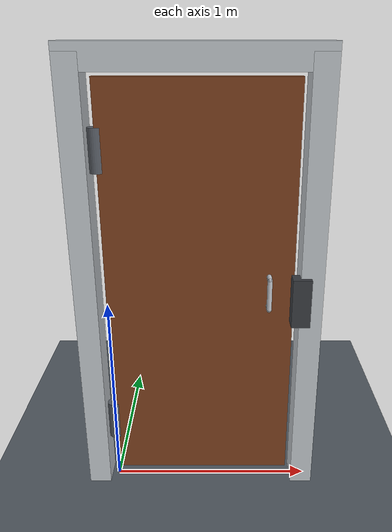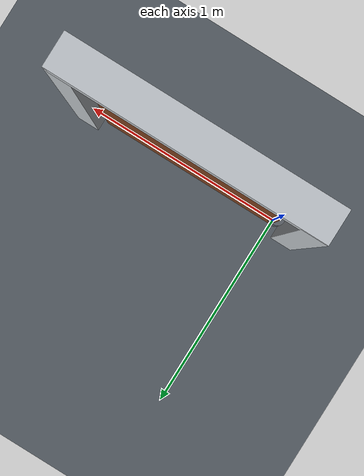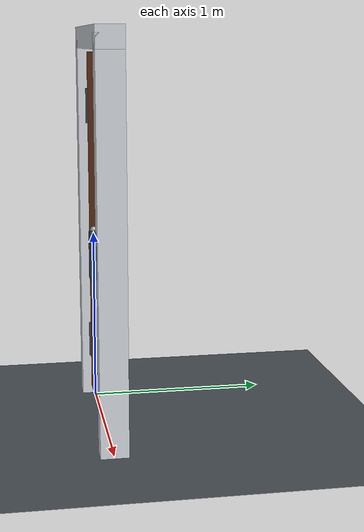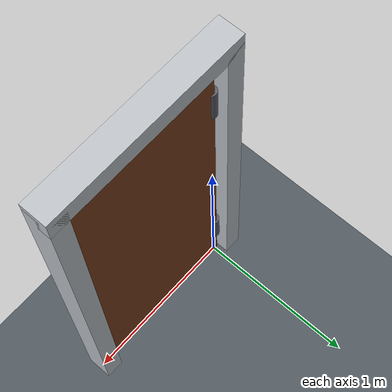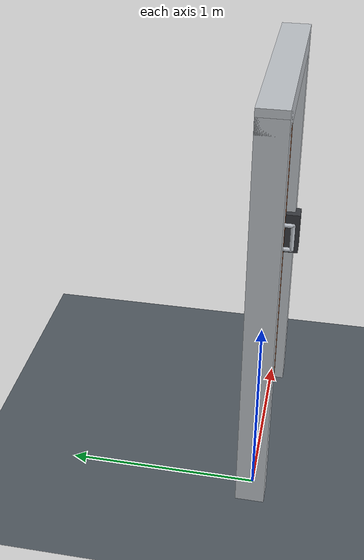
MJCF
<mujoco model="self_closing_door">
  <compiler angle="radian"/>
  <option timestep="0.002" gravity="0 0 -9.81" integrator="implicitfast"/>
  <visual>
    <headlight ambient="0.35 0.35 0.35" diffuse="0.65 0.65 0.65"/>
  </visual>

  <worldbody>
    <light name="overhead" pos="0 -2 5" dir="0 0 -1" diffuse="0.8 0.8 0.8"/>
    <camera name="overview" pos="3.2 -4.5 3.0" xyaxes="0.832 0.555 0 -0.203 0.304 0.930"/>

    <geom name="floor" type="plane" size="5 5 0.1" rgba="0.32 0.35 0.38 1"/>

    <body name="frame" pos="0 0 0">
      <geom name="hinge_jamb" type="box" pos="-0.09 0 1.08" size="0.055 0.075 1.08" rgba="0.75 0.77 0.79 1"/>
      <geom name="latch_jamb" type="box" pos="0.98 0 1.08" size="0.055 0.075 1.08" rgba="0.75 0.77 0.79 1"/>
      <geom name="header" type="box" pos="0.445 0 2.14" size="0.59 0.075 0.06" rgba="0.75 0.77 0.79 1"/>
      <geom name="closed_stop" type="box" pos="0.93 -0.065 1.05" size="0.045 0.04 0.12" rgba="0.22 0.23 0.25 1"/>
      <geom name="lower_hinge_barrel" type="cylinder" pos="0 0 0.35" size="0.035 0.10" contype="0" conaffinity="0" rgba="0.35 0.37 0.40 1"/>
      <geom name="upper_hinge_barrel" type="cylinder" pos="0 0 1.75" size="0.035 0.10" contype="0" conaffinity="0" rgba="0.35 0.37 0.40 1"/>
    </body>

    <body name="door" pos="0 0 0.06">
      <joint name="hinge" type="hinge" pos="0 0 0" axis="0 0 1" limited="true" range="0 1.5" stiffness="60" springref="0" damping="29"/>
      <geom name="door_panel" type="box" pos="0.45 0 1" size="0.45 0.025 1" mass="12" rgba="0.48 0.25 0.12 1"/>
      <geom name="handle_lower_mount" type="capsule" fromto="0.78 -0.025 0.95 0.78 -0.075 0.95" size="0.012" mass="0.015" rgba="0.75 0.77 0.80 1"/>
      <geom name="handle_upper_mount" type="capsule" fromto="0.78 -0.025 1.10 0.78 -0.075 1.10" size="0.012" mass="0.015" rgba="0.75 0.77 0.80 1"/>
      <geom name="handle_grip" type="capsule" fromto="0.78 -0.075 0.95 0.78 -0.075 1.10" size="0.012" mass="0.05" rgba="0.75 0.77 0.80 1"/>
    </body>
  </worldbody>

  <keyframe>
    <key name="start" qpos="1.2" qvel="0"/>
  </keyframe>
</mujoco>
